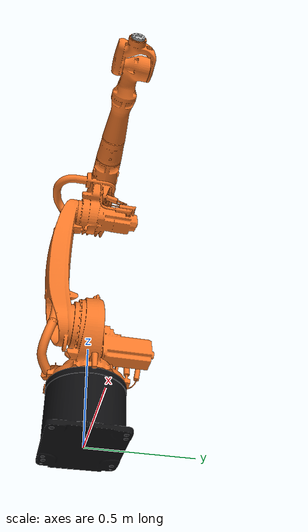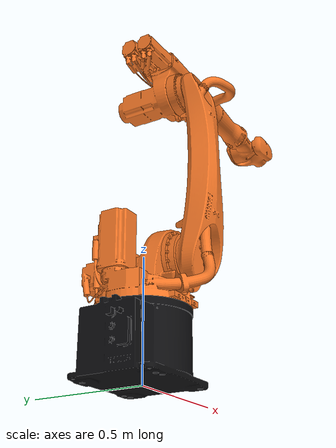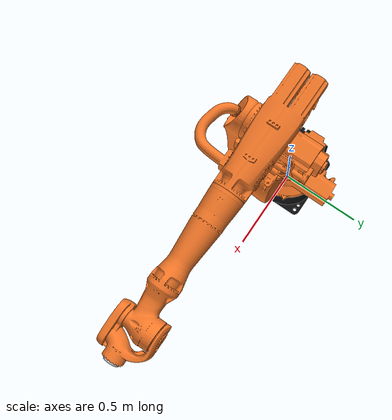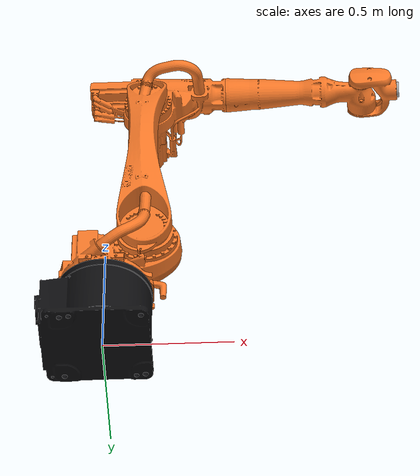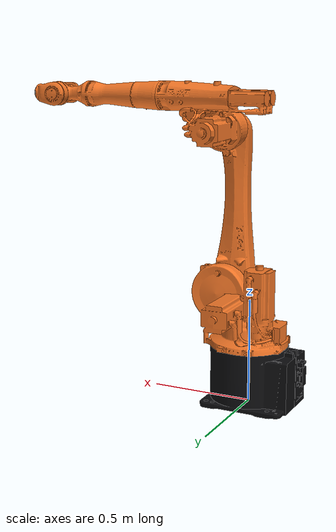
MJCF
<mujoco model="kuka_kr20">

    <compiler angle="radian" boundmass="0.001" boundinertia="0.001" meshdir="." />

    <option integrator="implicitfast" timestep="0.001" solver="Newton" iterations="100" />

    <default>
        <default class="kuka">
            <joint axis="0 0 1" />
            <general gaintype="fixed" biastype="affine" gainprm="2000" biasprm="0 -2000 -200" />
            <default class="visual">
                <geom type="mesh" contype="0" conaffinity="0" group="1" />
            </default>
            <default class="collision">
                <geom group="2" />
            </default>
        </default>
    </default>

    <asset>
        <material name="kuka_black"
            rgba="0.054901960784313725 0.054901960784313725 0.06274509803921569 1" />
        <material name="kuka_orange"
            rgba="0.9647058823529412 0.47058823529411764 0.1568627450980392 1" />
        <material name="silver" rgba="0.7 0.7 0.7 1" />

        <mesh name="base_link" file="assets/base_link.stl" scale="0.001 0.001 0.001" />
        <mesh name="link_1_1" file="assets/link_1_1.stl" scale="0.001 0.001 0.001" />
        <mesh name="link_2_1" file="assets/link_2_1.stl" scale="0.001 0.001 0.001" />
        <mesh name="link_3_1" file="assets/link_3_1.stl" scale="0.001 0.001 0.001" />
        <mesh name="link_4_1" file="assets/link_4_1.stl" scale="0.001 0.001 0.001" />
        <mesh name="link_5_1" file="assets/link_5_1.stl" scale="0.001 0.001 0.001" />
        <mesh name="link_6_1" file="assets/link_6_1.stl" scale="0.001 0.001 0.001" />
    </asset>

    <worldbody>
        <body name="base_link" pos="0 0 0">
            <inertial pos="-0.02519167908195973 -0.0003512237430115979 0.14073533087089485"
                mass="2.7534689254296694"
                diaginertia="4.167631 5.193899 5.744846" />
            <geom type="mesh" name="base_link_mesh" mesh="base_link" material="kuka_black" />

            <!-- Link 1 -->
            <body name="link_1_1" pos="0 0 0.274469">
                <inertial pos="0.04262669771195508 0.022539294966451077 0.16742328594359268"
                    mass="1.95025233840842"
                    diaginertia="3.903396 4.254089 4.101512" />
                <joint name="joint_1" axis="0 0 1" limited="true"
                    range="-3.2288591161895095 3.2288591161895095" />
                <geom type="mesh" name="link_1_1_mesh" pos="0 0 -0.274469" mesh="link_1_1"
                    material="kuka_orange" />

                <!-- Link 2 -->
                <body name="link_2_1" pos="0.16 -0.0948 0.245531">
                    <inertial pos="-0.006708726638690016 -0.08230603603988629 0.35023181950025006"
                        mass=".8242519331073362"
                        diaginertia="4.984932 5.021308 0.256664" />
                    <joint name="joint_2" axis="0 -1 0" limited="true"
                        range="-3.2288591161895095 1.1344640137963142" />
                    <geom type="mesh" name="link_2_1_mesh" pos="-0.16 0.0948 -0.52" mesh="link_2_1"
                        material="kuka_orange" />

                    <!-- Link 3 -->
                    <body name="link_3_1" pos="0 -0.0203 0.78">
                        <inertial pos="0.03856241201011176 0.11370205937926676 0.07616220977557053"
                            mass="1.1562183723958658"
                            diaginertia="1.475083 2.199261 2.25828" />
                        <joint name="joint_3" axis="0 1 0" limited="true"
                            range="-2.4085543677521746 3.0543261909900763" />
                        <geom type="mesh" name="link_3_1_mesh" pos="-0.16 0.1151 -1.3"
                            mesh="link_3_1" material="kuka_orange" />

                        <!-- Link 4 -->
                        <body name="link_4_1" pos="0.3 0.1151 0.15">
                            <inertial
                                pos="0.2794641231700052 0.005705547665961539 -1.1441231588804612e-06"
                                mass=".47719118331815324"
                                diaginertia="0.089286 1.63285 1.644056" />
                            <joint name="joint_4" axis="1 0 0" limited="true"
                                range="-6.108652381980153 6.108652381980153" />
                            <geom type="mesh" name="link_4_1_mesh" pos="-0.46 0 -1.45"
                                mesh="link_4_1" material="kuka_orange" />
                            <!-- Link 5 -->
                            <body name="link_5_1" pos="0.56 0.0923 0">
                                <inertial
                                    pos="0.05739426005238135 -0.10605062717888086 -4.807006906970557e-06"
                                    mass=".10353274319603718"
                                    diaginertia="0.043336 0.032453 0.064603" />
                                <joint name="joint_5" axis="0 1 0" limited="true"
                                    range="-2.2689280275926285 2.2689280275926285" />
                                <geom type="mesh" name="link_5_1_mesh" pos="-1.02 -0.0923 -1.45"
                                    mesh="link_5_1" material="kuka_orange" />

                                <!-- Link 6 -->
                                <body name="link_6_1" pos="0.139 -0.0923 0">
                                    <inertial
                                        pos="0.008129076502710442 -2.0340839963698945e-14 8.253251104872739e-05"
                                        mass="0.0020169644458108382"
                                        diaginertia="0.000104 5.5e-05 5.4e-05" />
                                    <joint name="joint_6" axis="1 0 0" limited="true"
                                        range="-6.108652381980153 6.108652381980153" />
                                    <geom type="mesh" name="link_6_1_mesh" pos="-1.159 0 -1.45"
                                        mesh="link_6_1" material="silver" />
                                </body>
                            </body>
                        </body>
                    </body>
                </body>
            </body>
        </body>
    </worldbody>

    <contact>
        <exclude body1="base_link" body2="link_1_1" />
        <exclude body1="link_1_1" body2="link_2_1" />
        <exclude body1="link_2_1" body2="link_3_1" />
        <exclude body1="link_3_1" body2="link_4_1" />
        <exclude body1="link_4_1" body2="link_5_1" />
        <exclude body1="link_5_1" body2="link_6_1" />
    </contact>

</mujoco>
